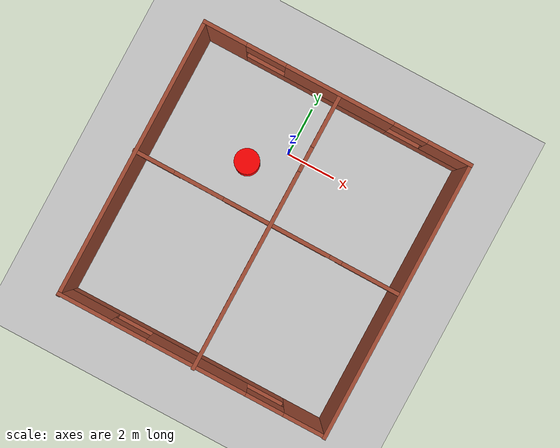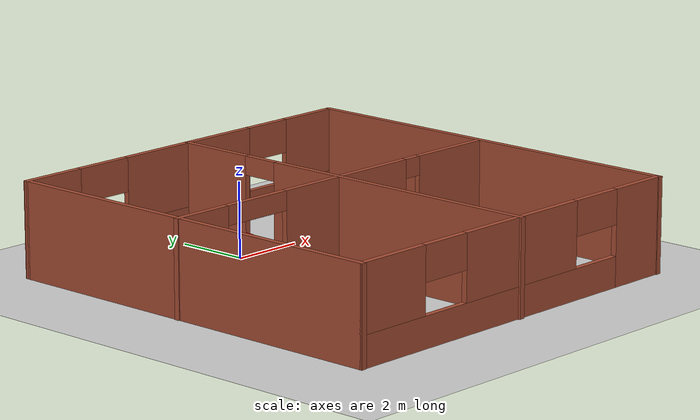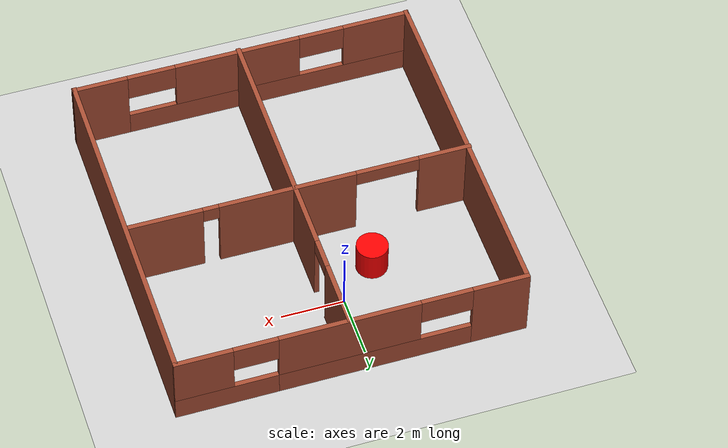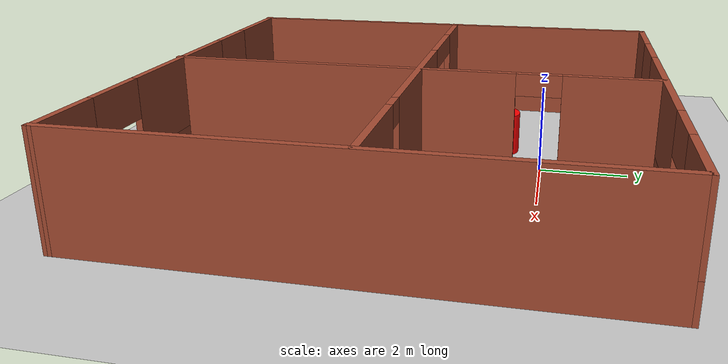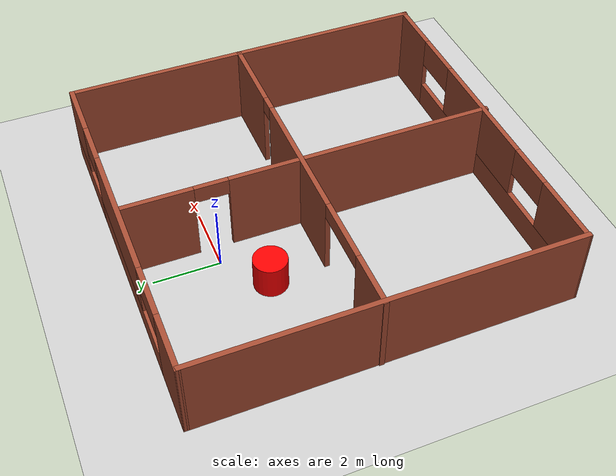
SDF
<sdf version="1.7">
 <world name="layka_empty">
  <physics name="10ms" type="ignored">
   <max_step_size>0.01</max_step_size>
   <real_time_factor>1.0</real_time_factor>
  </physics>
  <include><uri>https://fuel.gazebosim.org/1.0/openrobotics/models/Ground Plane</uri></include>
  <include><uri>https://fuel.gazebosim.org/1.0/openrobotics/models/Sun</uri></include>
  <model name="layka_house"><static>true</static><include><uri>model://layka_house</uri></include></model>
  <model name="cylinder1">
   <pose>-1.2312799692153931 -1.0711373090744019 0.49999880457427115 4.9953320288535869e-17 5.5074597021635991e-17 1.6864610867444622e-17</pose>
   <link name="cylinder_link">
    <inertial>
     <inertia>
      <ixx>0.14580000000000001</ixx>
      <ixy>0</ixy>
      <ixz>0</ixz>
      <iyy>0.14580000000000001</iyy>
      <iyz>0</iyz>
      <izz>0.125</izz>
     </inertia>
     <mass>1</mass>
    </inertial>
    <collision name="cylinder_collision">
     <geometry><cylinder><radius>0.5</radius><length>1</length></cylinder></geometry>
    </collision>
    <visual name="cylinder_visual">
     <geometry><cylinder><radius>0.5</radius><length>1</length></cylinder></geometry>
     <material><ambient>1 0 0 1</ambient><diffuse>1 0 0 1</diffuse><specular>0.5 0.5 0.5 1</specular></material>
    </visual>
   </link>
   <static>false</static>
  </model>
 </world>
</sdf>

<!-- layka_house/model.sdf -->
<sdf version='1.7'>
  <model name='layka_house'>
    <pose>0.57794 -3.04494 0 0 -0 0</pose>
    <link name='Wall_1'>
      <pose>0.00393 5.5721 0 0 -0 0</pose>
      <visual name='Wall_1_Visual_0'>
        <pose>-4.60887 0 1.25 0 -0 0</pose>
        <geometry>
          <box>
            <size>1.78226 0.15 2.5</size>
          </box>
        </geometry>
        <material>
          <script>
            <uri>file://media/materials/scripts/gazebo.material</uri>
            <name>Gazebo/Bricks</name>
          </script>
          <ambient>1 1 1 1</ambient>
        </material>
        <meta>
          <layer>0</layer>
        </meta>
      </visual>
      <collision name='Wall_1_Collision_0'>
        <geometry>
          <box>
            <size>1.78226 0.15 2.5</size>
          </box>
        </geometry>
        <pose>-4.60887 0 1.25 0 -0 0</pose>
      </collision>
      <visual name='Wall_1_Visual_1'>
        <pose>-0.710699 0 0.402 0 -0 0</pose>
        <geometry>
          <box>
            <size>6.01409 0.15 0.804</size>
          </box>
        </geometry>
        <material>
          <script>
            <uri>file://media/materials/scripts/gazebo.material</uri>
            <name>Gazebo/Bricks</name>
          </script>
          <ambient>1 1 1 1</ambient>
        </material>
        <meta>
          <layer>0</layer>
        </meta>
      </visual>
      <collision name='Wall_1_Collision_1'>
        <geometry>
          <box>
            <size>6.01409 0.15 0.804</size>
          </box>
        </geometry>
        <pose>-0.710699 0 0.402 0 -0 0</pose>
      </collision>
      <visual name='Wall_1_Visual_2'>
        <pose>3.89817 0 0.4 0 -0 0</pose>
        <geometry>
          <box>
            <size>3.20365 0.15 0.8</size>
          </box>
        </geometry>
        <material>
          <script>
            <uri>file://media/materials/scripts/gazebo.material</uri>
            <name>Gazebo/Bricks</name>
          </script>
          <ambient>1 1 1 1</ambient>
        </material>
        <meta>
          <layer>0</layer>
        </meta>
      </visual>
      <collision name='Wall_1_Collision_2'>
        <geometry>
          <box>
            <size>3.20365 0.15 0.8</size>
          </box>
        </geometry>
        <pose>3.89817 0 0.4 0 -0 0</pose>
      </collision>
      <visual name='Wall_1_Visual_3'>
        <pose>4.58717 0 1.65 0 -0 0</pose>
        <geometry>
          <box>
            <size>1.82565 0.15 1.7</size>
          </box>
        </geometry>
        <material>
          <script>
            <uri>file://media/materials/scripts/gazebo.material</uri>
            <name>Gazebo/Bricks</name>
          </script>
          <ambient>1 1 1 1</ambient>
        </material>
        <meta>
          <layer>0</layer>
        </meta>
      </visual>
      <collision name='Wall_1_Collision_3'>
        <geometry>
          <box>
            <size>1.82565 0.15 1.7</size>
          </box>
        </geometry>
        <pose>4.58717 0 1.65 0 -0 0</pose>
      </collision>
      <visual name='Wall_1_Visual_4'>
        <pose>0.094086 0 1.652 0 -0 0</pose>
        <geometry>
          <box>
            <size>4.40452 0.15 1.696</size>
          </box>
        </geometry>
        <material>
          <script>
            <uri>file://media/materials/scripts/gazebo.material</uri>
            <name>Gazebo/Bricks</name>
          </script>
          <ambient>1 1 1 1</ambient>
        </material>
        <meta>
          <layer>0</layer>
        </meta>
      </visual>
      <collision name='Wall_1_Collision_4'>
        <geometry>
          <box>
            <size>4.40452 0.15 1.696</size>
          </box>
        </geometry>
        <pose>0.094086 0 1.652 0 -0 0</pose>
      </collision>
      <visual name='Wall_1_Visual_5'>
        <pose>2.98535 0 2.05 0 -0 0</pose>
        <geometry>
          <box>
            <size>1.378 0.15 0.9</size>
          </box>
        </geometry>
        <material>
          <script>
            <uri>file://media/materials/scripts/gazebo.material</uri>
            <name>Gazebo/Bricks</name>
          </script>
          <ambient>1 1 1 1</ambient>
        </material>
        <meta>
          <layer>0</layer>
        </meta>
      </visual>
      <collision name='Wall_1_Collision_5'>
        <geometry>
          <box>
            <size>1.378 0.15 0.9</size>
          </box>
        </geometry>
        <pose>2.98535 0 2.05 0 -0 0</pose>
      </collision>
      <visual name='Wall_1_Visual_6'>
        <pose>-2.91296 0 2.052 0 -0 0</pose>
        <geometry>
          <box>
            <size>1.60957 0.15 0.896</size>
          </box>
        </geometry>
        <material>
          <script>
            <uri>file://media/materials/scripts/gazebo.material</uri>
            <name>Gazebo/Bricks</name>
          </script>
          <ambient>1 1 1 1</ambient>
        </material>
        <meta>
          <layer>0</layer>
        </meta>
      </visual>
      <collision name='Wall_1_Collision_6'>
        <geometry>
          <box>
            <size>1.60957 0.15 0.896</size>
          </box>
        </geometry>
        <pose>-2.91296 0 2.052 0 -0 0</pose>
      </collision>
    </link>
    <link name='Wall_10'>
      <pose>0.109515 -0.022099 0 0 -0 -1.5708</pose>
      <visual name='Wall_10_Visual_0'>
        <pose>-4.54219 0 1.25 0 -0 0</pose>
        <geometry>
          <box>
            <size>2.16563 0.15 2.5</size>
          </box>
        </geometry>
        <material>
          <script>
            <uri>file://media/materials/scripts/gazebo.material</uri>
            <name>Gazebo/Bricks</name>
          </script>
          <ambient>1 1 1 1</ambient>
        </material>
        <meta>
          <layer>0</layer>
        </meta>
      </visual>
      <collision name='Wall_10_Collision_0'>
        <geometry>
          <box>
            <size>2.16563 0.15 2.5</size>
          </box>
        </geometry>
        <pose>-4.54219 0 1.25 0 -0 0</pose>
      </collision>
      <visual name='Wall_10_Visual_1'>
        <pose>1.58281 0 1.25 0 -0 0</pose>
        <geometry>
          <box>
            <size>8.08437 0.15 2.5</size>
          </box>
        </geometry>
        <material>
          <script>
            <uri>file://media/materials/scripts/gazebo.material</uri>
            <name>Gazebo/Bricks</name>
          </script>
          <ambient>1 1 1 1</ambient>
        </material>
        <meta>
          <layer>0</layer>
        </meta>
      </visual>
      <collision name='Wall_10_Collision_1'>
        <geometry>
          <box>
            <size>8.08437 0.15 2.5</size>
          </box>
        </geometry>
        <pose>1.58281 0 1.25 0 -0 0</pose>
      </collision>
      <visual name='Wall_10_Visual_2'>
        <pose>-2.95937 0 2.25 0 -0 0</pose>
        <geometry>
          <box>
            <size>1 0.15 0.5</size>
          </box>
        </geometry>
        <material>
          <script>
            <uri>file://media/materials/scripts/gazebo.material</uri>
            <name>Gazebo/Bricks</name>
          </script>
          <ambient>1 1 1 1</ambient>
        </material>
        <meta>
          <layer>0</layer>
        </meta>
      </visual>
      <collision name='Wall_10_Collision_2'>
        <geometry>
          <box>
            <size>1 0.15 0.5</size>
          </box>
        </geometry>
        <pose>-2.95937 0 2.25 0 -0 0</pose>
      </collision>
    </link>
    <link name='Wall_2'>
      <collision name='Wall_2_Collision'>
        <geometry>
          <box>
            <size>11.2369 0.15 2.5</size>
          </box>
        </geometry>
        <pose>0 0 1.25 0 -0 0</pose>
      </collision>
      <visual name='Wall_2_Visual'>
        <pose>0 0 1.25 0 -0 0</pose>
        <geometry>
          <box>
            <size>11.2369 0.15 2.5</size>
          </box>
        </geometry>
        <material>
          <script>
            <uri>file://media/materials/scripts/gazebo.material</uri>
            <name>Gazebo/Bricks</name>
          </script>
          <ambient>1 1 1 1</ambient>
        </material>
        <meta>
          <layer>0</layer>
        </meta>
      </visual>
      <pose>5.4355 0.005514 0 0 -0 -1.56961</pose>
    </link>
    <link name='Wall_3'>
      <pose>0.017061 -5.51481 0 0 -0 3.14159</pose>
      <visual name='Wall_3_Visual_0'>
        <pose>-4.61537 0 1.25 0 -0 0</pose>
        <geometry>
          <box>
            <size>1.76926 0.15 2.5</size>
          </box>
        </geometry>
        <material>
          <script>
            <uri>file://media/materials/scripts/gazebo.material</uri>
            <name>Gazebo/Bricks</name>
          </script>
          <ambient>1 1 1 1</ambient>
        </material>
        <meta>
          <layer>0</layer>
        </meta>
      </visual>
      <collision name='Wall_3_Collision_0'>
        <geometry>
          <box>
            <size>1.76926 0.15 2.5</size>
          </box>
        </geometry>
        <pose>-4.61537 0 1.25 0 -0 0</pose>
      </collision>
      <visual name='Wall_3_Visual_1'>
        <pose>0.88463 0 0.4 0 -0 0</pose>
        <geometry>
          <box>
            <size>9.23074 0.15 0.8</size>
          </box>
        </geometry>
        <material>
          <script>
            <uri>file://media/materials/scripts/gazebo.material</uri>
            <name>Gazebo/Bricks</name>
          </script>
          <ambient>1 1 1 1</ambient>
        </material>
        <meta>
          <layer>0</layer>
        </meta>
      </visual>
      <collision name='Wall_3_Collision_1'>
        <geometry>
          <box>
            <size>9.23074 0.15 0.8</size>
          </box>
        </geometry>
        <pose>0.88463 0 0.4 0 -0 0</pose>
      </collision>
      <visual name='Wall_3_Visual_2'>
        <pose>-0.161932 0 1.65 0 -0 0</pose>
        <geometry>
          <box>
            <size>4.05726 0.15 1.7</size>
          </box>
        </geometry>
        <material>
          <script>
            <uri>file://media/materials/scripts/gazebo.material</uri>
            <name>Gazebo/Bricks</name>
          </script>
          <ambient>1 1 1 1</ambient>
        </material>
        <meta>
          <layer>0</layer>
        </meta>
      </visual>
      <collision name='Wall_3_Collision_2'>
        <geometry>
          <box>
            <size>4.05726 0.15 1.7</size>
          </box>
        </geometry>
        <pose>-0.161932 0 1.65 0 -0 0</pose>
      </collision>
      <visual name='Wall_3_Visual_3'>
        <pose>4.40735 0 1.65 0 -0 0</pose>
        <geometry>
          <box>
            <size>2.1853 0.15 1.7</size>
          </box>
        </geometry>
        <material>
          <script>
            <uri>file://media/materials/scripts/gazebo.material</uri>
            <name>Gazebo/Bricks</name>
          </script>
          <ambient>1 1 1 1</ambient>
        </material>
        <meta>
          <layer>0</layer>
        </meta>
      </visual>
      <collision name='Wall_3_Collision_3'>
        <geometry>
          <box>
            <size>2.1853 0.15 1.7</size>
          </box>
        </geometry>
        <pose>4.40735 0 1.65 0 -0 0</pose>
      </collision>
      <visual name='Wall_3_Visual_4'>
        <pose>-2.96065 0 2.05 0 -0 0</pose>
        <geometry>
          <box>
            <size>1.54018 0.15 0.9</size>
          </box>
        </geometry>
        <material>
          <script>
            <uri>file://media/materials/scripts/gazebo.material</uri>
            <name>Gazebo/Bricks</name>
          </script>
          <ambient>1 1 1 1</ambient>
        </material>
        <meta>
          <layer>0</layer>
        </meta>
      </visual>
      <collision name='Wall_3_Collision_4'>
        <geometry>
          <box>
            <size>1.54018 0.15 0.9</size>
          </box>
        </geometry>
        <pose>-2.96065 0 2.05 0 -0 0</pose>
      </collision>
      <visual name='Wall_3_Visual_5'>
        <pose>2.5907 0 2.05 0 -0 0</pose>
        <geometry>
          <box>
            <size>1.448 0.15 0.9</size>
          </box>
        </geometry>
        <material>
          <script>
            <uri>file://media/materials/scripts/gazebo.material</uri>
            <name>Gazebo/Bricks</name>
          </script>
          <ambient>1 1 1 1</ambient>
        </material>
        <meta>
          <layer>0</layer>
        </meta>
      </visual>
      <collision name='Wall_3_Collision_5'>
        <geometry>
          <box>
            <size>1.448 0.15 0.9</size>
          </box>
        </geometry>
        <pose>2.5907 0 2.05 0 -0 0</pose>
      </collision>
    </link>
    <link name='Wall_4'>
      <collision name='Wall_4_Collision'>
        <geometry>
          <box>
            <size>11.2369 0.15 2.5</size>
          </box>
        </geometry>
        <pose>0 0 1.25 0 -0 0</pose>
      </collision>
      <visual name='Wall_4_Visual'>
        <pose>0 0 1.25 0 -0 0</pose>
        <geometry>
          <box>
            <size>11.2369 0.15 2.5</size>
          </box>
        </geometry>
        <material>
          <script>
            <uri>file://media/materials/scripts/gazebo.material</uri>
            <name>Gazebo/Bricks</name>
          </script>
          <ambient>1 1 1 1</ambient>
        </material>
        <meta>
          <layer>0</layer>
        </meta>
      </visual>
      <pose>-5.41451 0.005514 0 0 -0 1.57198</pose>
    </link>
    <link name='Wall_6'>
      <pose>-0.016831 0.277253 0 0 -0 -0.004264</pose>
      <visual name='Wall_6_Visual_0'>
        <pose>-4.65563 0 1.25 0 -0 0</pose>
        <geometry>
          <box>
            <size>1.68883 0.15 2.5</size>
          </box>
        </geometry>
        <material>
          <script>
            <uri>file://media/materials/scripts/gazebo.material</uri>
            <name>Gazebo/Bricks</name>
          </script>
          <ambient>1 1 1 1</ambient>
        </material>
        <meta>
          <layer>0</layer>
        </meta>
      </visual>
      <collision name='Wall_6_Collision_0'>
        <geometry>
          <box>
            <size>1.68883 0.15 2.5</size>
          </box>
        </geometry>
        <pose>-4.65563 0 1.25 0 -0 0</pose>
      </collision>
      <visual name='Wall_6_Visual_1'>
        <pose>0.362907 0 1.25 0 -0 0</pose>
        <geometry>
          <box>
            <size>4.34825 0.15 2.5</size>
          </box>
        </geometry>
        <material>
          <script>
            <uri>file://media/materials/scripts/gazebo.material</uri>
            <name>Gazebo/Bricks</name>
          </script>
          <ambient>1 1 1 1</ambient>
        </material>
        <meta>
          <layer>0</layer>
        </meta>
      </visual>
      <collision name='Wall_6_Collision_1'>
        <geometry>
          <box>
            <size>4.34825 0.15 2.5</size>
          </box>
        </geometry>
        <pose>0.362907 0 1.25 0 -0 0</pose>
      </collision>
      <visual name='Wall_6_Visual_2'>
        <pose>4.26854 0 1.25 0 -0 0</pose>
        <geometry>
          <box>
            <size>2.46302 0.15 2.5</size>
          </box>
        </geometry>
        <material>
          <script>
            <uri>file://media/materials/scripts/gazebo.material</uri>
            <name>Gazebo/Bricks</name>
          </script>
          <ambient>1 1 1 1</ambient>
        </material>
        <meta>
          <layer>0</layer>
        </meta>
      </visual>
      <collision name='Wall_6_Collision_2'>
        <geometry>
          <box>
            <size>2.46302 0.15 2.5</size>
          </box>
        </geometry>
        <pose>4.26854 0 1.25 0 -0 0</pose>
      </collision>
      <visual name='Wall_6_Visual_3'>
        <pose>-2.81122 0 2.25 0 -0 0</pose>
        <geometry>
          <box>
            <size>2 0.15 0.5</size>
          </box>
        </geometry>
        <material>
          <script>
            <uri>file://media/materials/scripts/gazebo.material</uri>
            <name>Gazebo/Bricks</name>
          </script>
          <ambient>1 1 1 1</ambient>
        </material>
        <meta>
          <layer>0</layer>
        </meta>
      </visual>
      <collision name='Wall_6_Collision_3'>
        <geometry>
          <box>
            <size>2 0.15 0.5</size>
          </box>
        </geometry>
        <pose>-2.81122 0 2.25 0 -0 0</pose>
      </collision>
      <visual name='Wall_6_Visual_4'>
        <pose>2.78703 0 2.25 0 -0 0</pose>
        <geometry>
          <box>
            <size>0.5 0.15 0.5</size>
          </box>
        </geometry>
        <material>
          <script>
            <uri>file://media/materials/scripts/gazebo.material</uri>
            <name>Gazebo/Bricks</name>
          </script>
          <ambient>1 1 1 1</ambient>
        </material>
        <meta>
          <layer>0</layer>
        </meta>
      </visual>
      <collision name='Wall_6_Collision_4'>
        <geometry>
          <box>
            <size>0.5 0.15 0.5</size>
          </box>
        </geometry>
        <pose>2.78703 0 2.25 0 -0 0</pose>
      </collision>
    </link>
    <static>1</static>
  </model>
</sdf>
